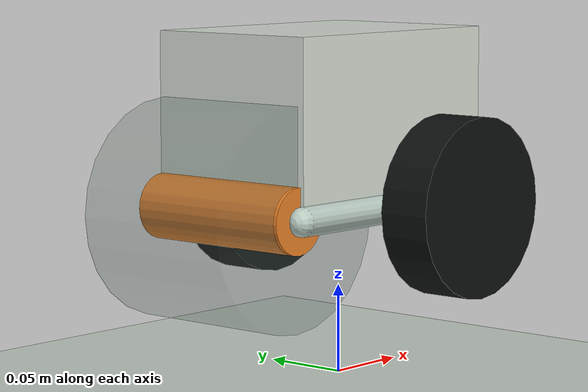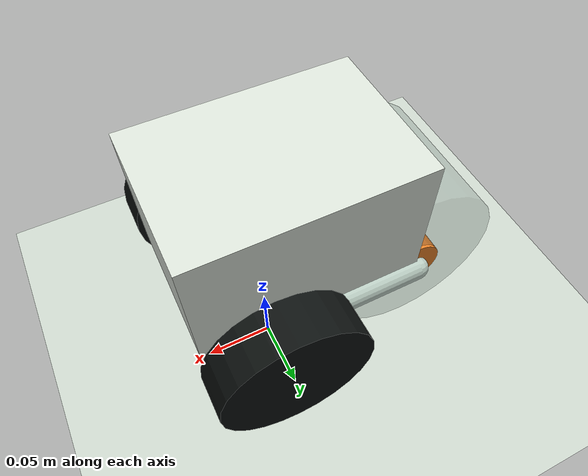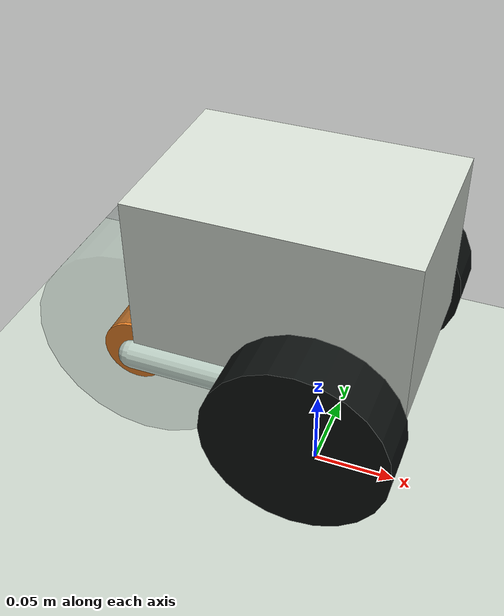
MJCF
<mujoco model="beni_component_jump_development"><compiler angle="radian" autolimits="true" /><option timestep=".0005" integrator="implicitfast" gravity="0 0 -9.81" iterations="70" /><visual><global offwidth="1280" offheight="960" /></visual><default><geom friction="0.8 0.005 0.0001" solref=".004 1" solimp=".95 .99 .001" /></default><worldbody><geom name="ground" type="plane" size="4 4 .1" rgba=".78 .82 .78 1" /><light pos="0 -1 2" dir="0 0 -1" /><camera name="overview" pos=".6 -.9 .43" xyaxes=".832 .555 0 -.192 .288 .938" /><body name="chassis" pos="0 0 .10"><freejoint name="root" /><inertial pos=".018 0 .050" mass="1.4" diaginertia=".0038 .0048 .0048" /><geom name="body_shell" type="box" pos="-.014 0 .049" size=".075 .052 .047" rgba=".84 .87 .83 1" contype="0" conaffinity="0" /><geom name="body_collision" type="box" pos="-.014 0 .049" size=".072 .049 .043" rgba="0 0 0 0" /><geom name="rear_cover_collision" type="cylinder" pos="-0.09 0 0" size=".060 .048" quat=".70710678 .70710678 0 0" rgba=".3 .38 .36 .25" /><site name="imu" pos="0 0 .08" size=".002" /><body name="shared_drive" pos="-0.09 0 0"><joint name="shaft" type="hinge" axis="0 1 0" range="-.35 1.8" armature="0.00655" damping=".004" frictionloss=".005" /><inertial pos="0 0 0" mass=".04" diaginertia=".000025 .00005 .000025" /><geom type="cylinder" size=".018 .050" quat=".70710678 .70710678 0 0" rgba=".9 .5 .15 1" contype="0" conaffinity="0" /></body><body name="left_arm" pos="-0.09 0.052 0"><joint name="left_arm" type="hinge" axis="0 1 0" range="-.35 1.35" damping=".003" frictionloss="0.01" /><inertial pos="0.07875 -0.01 0" mass=".20" diaginertia=".0001 .0002 .00023" /><geom name="left_arm_cover" type="capsule" fromto="0 0 0 0.105 0 0" size=".008" rgba=".72 .79 .75 1" /><body name="left_wheel" pos="0.105 0.023 0"><joint name="left_wheel" type="hinge" axis="0 1 0" damping=".0003" frictionloss=".001" /><inertial pos="0 0 0" mass=".08" diaginertia=".000056 .0001 .000056" /><geom name="left_tire" type="cylinder" size="0.05 0.015" quat=".70710678 .70710678 0 0" condim="4" rgba=".05 .065 .06 1" /></body></body><body name="right_arm" pos="-0.09 -0.052 0"><joint name="right_arm" type="hinge" axis="0 1 0" range="-.35 1.35" damping=".003" frictionloss="0.01" /><inertial pos="0.07875 0.01 0" mass=".20" diaginertia=".0001 .0002 .00023" /><geom name="right_arm_cover" type="capsule" fromto="0 0 0 0.105 0 0" size=".008" rgba=".72 .79 .75 1" /><body name="right_wheel" pos="0.105 -0.023 0"><joint name="right_wheel" type="hinge" axis="0 1 0" damping=".0003" frictionloss=".001" /><inertial pos="0 0 0" mass=".08" diaginertia=".000056 .0001 .000056" /><geom name="right_tire" type="cylinder" size="0.05 0.015" quat=".70710678 .70710678 0 0" condim="4" rgba=".05 .065 .06 1" /></body></body></body></worldbody><tendon><fixed name="left_spring_pair" stiffness="11000" springlength="0" damping="40" limited="false"><joint joint="shaft" coef="0.03" /><joint joint="left_arm" coef="-0.03" /></fixed><fixed name="right_spring_pair" stiffness="11000" springlength="0" damping="40" limited="false"><joint joint="shaft" coef="0.03" /><joint joint="right_arm" coef="-0.03" /></fixed></tendon><actuator><motor name="left_drive" joint="left_wheel" gear="1" ctrlrange="-.45 .45" /><motor name="right_drive" joint="right_wheel" gear="1" ctrlrange="-.45 .45" /><motor name="jump_drive" joint="shaft" gear="1" ctrlrange="-15 15" /></actuator><contact><exclude body1="chassis" body2="left_arm" /><exclude body1="chassis" body2="right_arm" /></contact><sensor><gyro name="gyro" site="imu" /><accelerometer name="accel" site="imu" /></sensor></mujoco>
